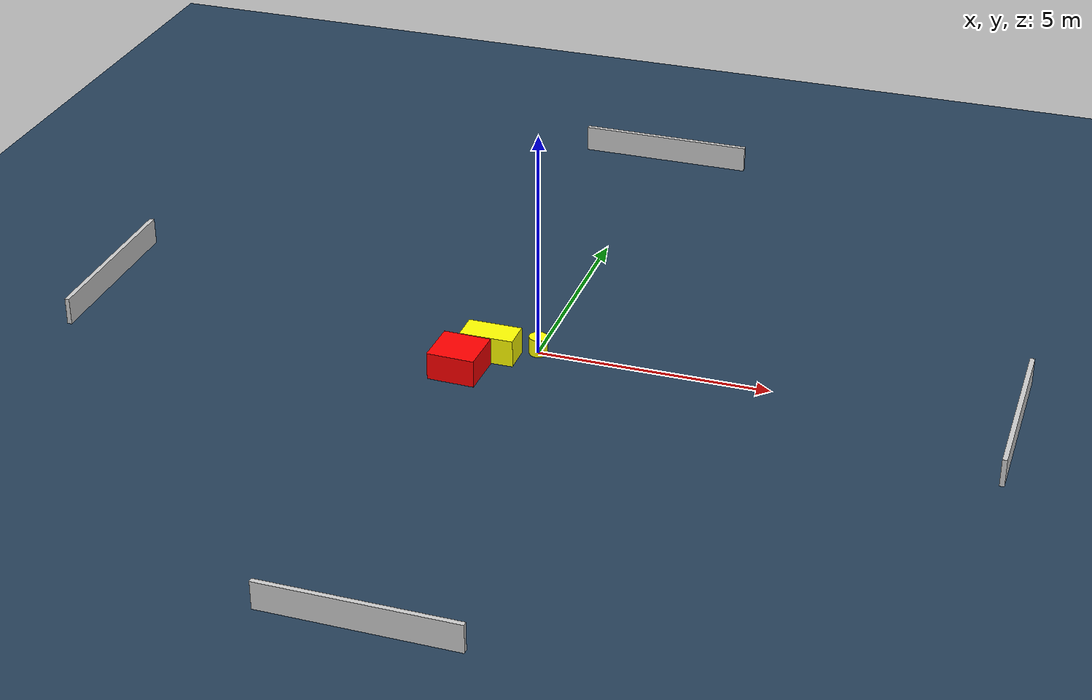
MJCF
<?xml version="1.0" ?>
<mujoco model="generated_environment">
  <option timestep="0.01" integrator="RK4" cone="elliptic"/>
  <default>
    <geom density="1"/>
  </default>
  <asset>
    <texture builtin="gradient" height="3072" name="skybox" rgb1="0.3 0.5 0.7" rgb2="0 0 0" type="skybox" width="512"/>
    <texture builtin="checker" height="300" name="groundplane" rgb1="0.2 0.3 0.4" rgb2="0.1 0.2 0.3" type="2d" width="300"/>
    <material name="groundplane" reflectance="0.2" texrepeat="5 5" texture="groundplane"/>
  </asset>
  <worldbody>
    <light dir="0 0 -1" directional="true" pos="0 0 1.5"/>
    <geom condim="3" friction="0.5 0.005 0.001" material="groundplane" name="floor" pos="0 0 0" size="0 0 0.05" type="plane"/>
    <body name="walls">
      <geom name="wall_1" condim="4" pos="-10.0 0.0 0.3" rgba="0.800000011920929 0.800000011920929 0.800000011920929 1.0" size="0.05 2.0 0.3" type="box"/>
      <geom name="wall_2" condim="4" pos="10.0 0.0 0.3" rgba="0.800000011920929 0.800000011920929 0.800000011920929 1.0" size="0.05 2.0 0.3" type="box"/>
      <geom name="wall_3" condim="4" pos="0.0 -10.0 0.3" rgba="0.800000011920929 0.800000011920929 0.800000011920929 1.0" size="2.0 0.05 0.3" type="box"/>
      <geom name="wall_4" condim="4" pos="0.0 10.0 0.3" rgba="0.800000011920929 0.800000011920929 0.800000011920929 1.0" size="2.0 0.05 0.3" type="box"/>
    </body>
    <body name="robot">
      <joint name="joint_x" type="slide" pos="0 0 0" axis="1 0 0"/>
      <joint name="joint_y" type="slide" pos="0 0 0" axis="0 1 0"/>
      <geom name="robot" type="cylinder" pos="0.0 0.0 0.2" size="0.2 0.2 0.0" mass="5.0" friction="1.0 0.005 0.0001" condim="4" rgba="1.0 1.0 0.0 1.0"/>
    </body>
    <body name="obstacle_1_movable">
      <geom name="obstacle_1_movable" condim="4" pos="-0.916153168017726 -0.4117417224494591 0.3" euler="0 0 89.90632217175765" friction="0.0 0.005 0.001" rgba="1.0 1.0 0.0 1.0" size="0.30724166310449846 0.5836401597081571 0.3" type="box" mass="0.1"/>
      <joint type="free"/>
    </body>
    <body name="obstacle_2_static">
      <geom name="obstacle_2_static" condim="4" pos="-1.3280618259269743 -1.2351165343245412 0.3" euler="0 0 358.4721186928567" friction="0.0 0.005 0.001" rgba="1.0 0.0 0.0 1.0" size="0.5153839319764899 0.4979538864392496 0.3" type="box"/>
    </body>
  </worldbody>
  <actuator>
    <motor name="actuator_x" joint="joint_x" gear="1" ctrlrange="-1 1"/>
    <motor name="actuator_y" joint="joint_y" gear="1" ctrlrange="-1 1"/>
  </actuator>
</mujoco>
